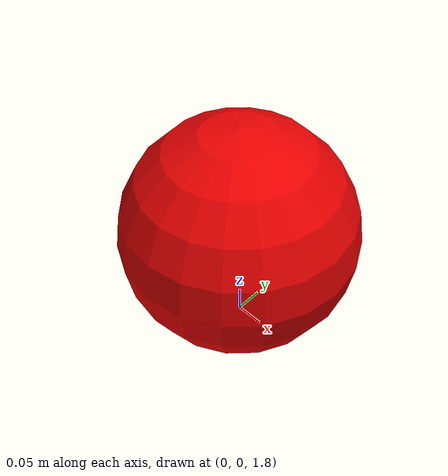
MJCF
<mujoco>

  <compiler angle="radian" coordinate="local" inertiafromgeom="true"/>

  <default>
    <joint armature="0" damping="0.1" limited="false"/>
    <geom friction="0.1" solimp="0.99 0.99 0.8" solref="0.01 0.5"/>
  </default>

  <option gravity="0 0 -9.8" timestep="0.009"/>

  <asset>
    <!-- Define the textures -->
    <texture name="texplane" type="2d" builtin="checker" rgb1=".5 .8 .9" rgb2=".6 .9 1" width="512" height="512"/>
    <material name="MatPlane" texture="texplane" texrepeat="10 10" texuniform="true"/>

    <texture name="ball_texture" type="cube" builtin="checker" rgb1="1 0 0" rgb2="0.8 0 0" width="300" height="300"/>
    <material name="MatBall" texture="ball_texture" texrepeat="8 8"/>
  </asset>

  <worldbody>

    <!-- Light sources -->
    <light diffuse=".5 .5 .5" dir="0 0 -1" pos="0 0 3"/>

    <!-- Inclined ground setup with placeholder for angle -->
    <body name="inclined_plane" pos="0 0 0">
      <!-- Replace 0.7 dynamically from Python -->
      <geom condim="3" material="MatPlane" name="ground" pos="0 0 0" size="5 5 0.1" type="plane" euler="0 0 0" solref="0.001 1.0"/>
    </body>

    <!-- Ball setup -->
    <body name="ball" pos="0 0 2.0" euler="0 0 0">
      <joint name="ball_joint" type="free" damping="0.001"/>
      <geom name="ball_geom" size="0.2" type="sphere" material="MatBall" density="50" solref="0.001 1.0"/>
    </body>

  </worldbody>

</mujoco>
